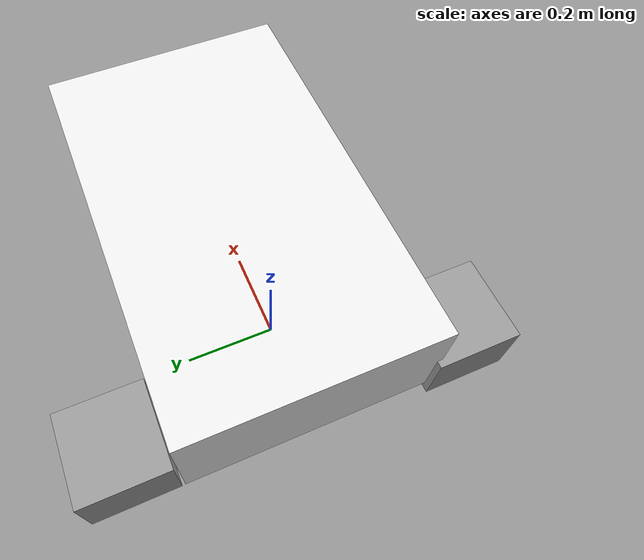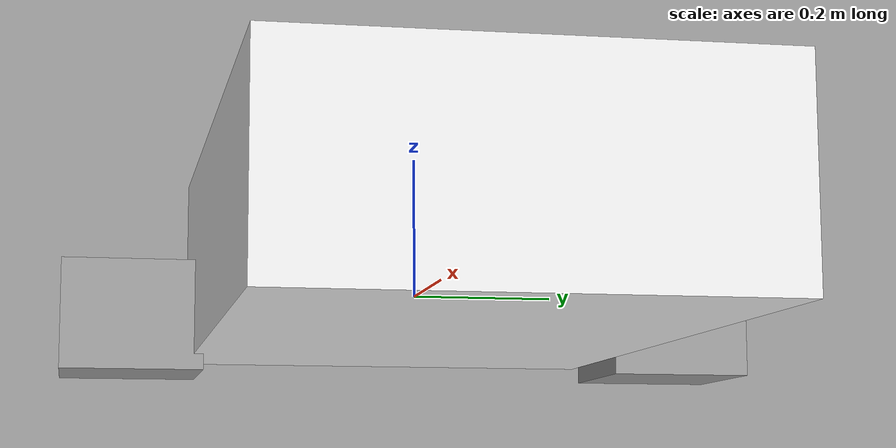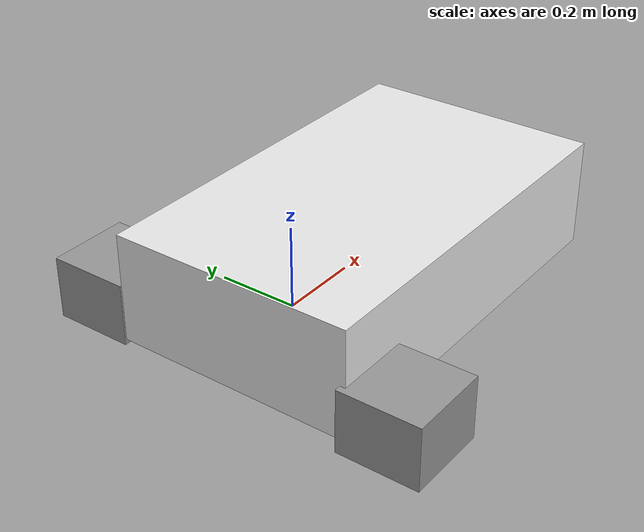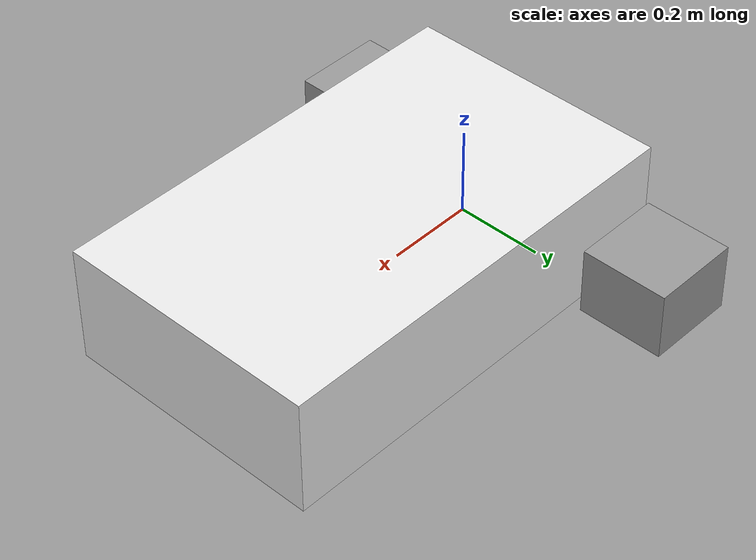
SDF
<?xml version='1.0'?>
<sdf version='1.7'>
  <model name='bed'>
    <link name='link_1'>
      <inertial>
        <mass>0.166557</mass>
        <inertia>
          <ixx>0.00618823</ixx>
          <ixy>0</ixy>
          <ixz>0</ixz>
          <iyy>0.0149173</iyy>
          <iyz>0</iyz>
          <izz>0.0190304</izz>
        </inertia>
        <pose>0 0 0 0 -0 0</pose>
      </inertial>
      <pose>0.268517 -0.007523 0.053425 0 -0 0</pose>
      <gravity>1</gravity>
      <self_collide>0</self_collide>
      <kinematic>0</kinematic>
      <enable_wind>0</enable_wind>
      <visual name='visual'>
        <pose>0 0 0 0 -0 0</pose>
        <geometry>
          <box>
            <size>1 0.609172 0.273416</size>
          </box>
        </geometry>
        <material>
          <lighting>1</lighting>
          <script>
            <uri>file://media/materials/scripts/gazebo.material</uri>
            <name>Gazebo/White</name>
          </script>
          <shader type='pixel'>
            <normal_map>__default__</normal_map>
          </shader>
          <ambient>1 1 1 1</ambient>
          <diffuse>1 1 1 1</diffuse>
          <specular>0 0 0 1</specular>
          <emissive>0 0 0 1</emissive>
        </material>
        <transparency>0</transparency>
        <cast_shadows>1</cast_shadows>
      </visual>
      <collision name='collision'>
        <laser_retro>0</laser_retro>
        <max_contacts>10</max_contacts>
        <pose>0 0 0 0 -0 0</pose>
        <geometry>
          <box>
            <size>1 0.609172 0.273416</size>
          </box>
        </geometry>
        <surface>
          <friction>
            <ode>
              <mu>1</mu>
              <mu2>1</mu2>
              <fdir1>0 0 0</fdir1>
              <slip1>0</slip1>
              <slip2>0</slip2>
            </ode>
            <torsional>
              <coefficient>1</coefficient>
              <patch_radius>0</patch_radius>
              <surface_radius>0</surface_radius>
              <use_patch_radius>1</use_patch_radius>
              <ode>
                <slip>0</slip>
              </ode>
            </torsional>
          </friction>
          <bounce>
            <restitution_coefficient>0</restitution_coefficient>
            <threshold>1e+06</threshold>
          </bounce>
          <contact>
            <collide_without_contact>0</collide_without_contact>
            <collide_without_contact_bitmask>1</collide_without_contact_bitmask>
            <collide_bitmask>1</collide_bitmask>
            <ode>
              <soft_cfm>0</soft_cfm>
              <soft_erp>0.2</soft_erp>
              <kp>1e+13</kp>
              <kd>1</kd>
              <max_vel>0.01</max_vel>
              <min_depth>0</min_depth>
            </ode>
            <bullet>
              <split_impulse>1</split_impulse>
              <split_impulse_penetration_threshold>-0.01</split_impulse_penetration_threshold>
              <soft_cfm>0</soft_cfm>
              <soft_erp>0.2</soft_erp>
              <kp>1e+13</kp>
              <kd>1</kd>
            </bullet>
          </contact>
        </surface>
      </collision>
    </link>
    <link name='link_2'>
      <inertial>
        <mass>0.00661892</mass>
        <inertia>
          <ixx>3.651e-05</ixx>
          <ixy>0</ixy>
          <ixz>0</ixz>
          <iyy>3.722e-05</iyy>
          <iyz>0</iyz>
          <izz>4.631e-05</izz>
        </inertia>
        <pose>0 0 0 0 -0 0</pose>
      </inertial>
      <pose>-0.144333 -0.400103 -0.02691 0 -0 0</pose>
      <gravity>1</gravity>
      <self_collide>0</self_collide>
      <kinematic>0</kinematic>
      <enable_wind>0</enable_wind>
      <visual name='visual'>
        <pose>0 0 0 0 -0 0</pose>
        <geometry>
          <box>
            <size>0.206441 0.203314 0.157681</size>
          </box>
        </geometry>
        <material>
          <lighting>1</lighting>
          <script>
            <uri>file://media/materials/scripts/gazebo.material</uri>
            <name>Gazebo/Grey</name>
          </script>
          <shader type='pixel'>
            <normal_map>__default__</normal_map>
          </shader>
          <ambient>0 0 0 1</ambient>
          <diffuse>0 0 0 1</diffuse>
          <specular>0 0 0 1</specular>
          <emissive>0 0 0 1</emissive>
        </material>
        <transparency>0</transparency>
        <cast_shadows>1</cast_shadows>
      </visual>
      <collision name='collision'>
        <laser_retro>0</laser_retro>
        <max_contacts>10</max_contacts>
        <pose>0 0 0 0 -0 0</pose>
        <geometry>
          <box>
            <size>0.206441 0.203314 0.157681</size>
          </box>
        </geometry>
        <surface>
          <friction>
            <ode>
              <mu>1</mu>
              <mu2>1</mu2>
              <fdir1>0 0 0</fdir1>
              <slip1>0</slip1>
              <slip2>0</slip2>
            </ode>
            <torsional>
              <coefficient>1</coefficient>
              <patch_radius>0</patch_radius>
              <surface_radius>0</surface_radius>
              <use_patch_radius>1</use_patch_radius>
              <ode>
                <slip>0</slip>
              </ode>
            </torsional>
          </friction>
          <bounce>
            <restitution_coefficient>0</restitution_coefficient>
            <threshold>1e+06</threshold>
          </bounce>
          <contact>
            <collide_without_contact>0</collide_without_contact>
            <collide_without_contact_bitmask>1</collide_without_contact_bitmask>
            <collide_bitmask>1</collide_bitmask>
            <ode>
              <soft_cfm>0</soft_cfm>
              <soft_erp>0.2</soft_erp>
              <kp>1e+13</kp>
              <kd>1</kd>
              <max_vel>0.01</max_vel>
              <min_depth>0</min_depth>
            </ode>
            <bullet>
              <split_impulse>1</split_impulse>
              <split_impulse_penetration_threshold>-0.01</split_impulse_penetration_threshold>
              <soft_cfm>0</soft_cfm>
              <soft_erp>0.2</soft_erp>
              <kp>1e+13</kp>
              <kd>1</kd>
            </bullet>
          </contact>
        </surface>
      </collision>
    </link>
    <link name='link_2_clone'>
      <inertial>
        <mass>0.00661892</mass>
        <inertia>
          <ixx>3.651e-05</ixx>
          <ixy>0</ixy>
          <ixz>0</ixz>
          <iyy>3.722e-05</iyy>
          <iyz>0</iyz>
          <izz>4.631e-05</izz>
        </inertia>
        <pose>0 0 0 0 -0 0</pose>
      </inertial>
      <pose>-0.124183 0.407627 -0.026515 0 -0 0</pose>
      <gravity>1</gravity>
      <self_collide>0</self_collide>
      <kinematic>0</kinematic>
      <enable_wind>0</enable_wind>
      <visual name='visual'>
        <pose>0 0 0 0 -0 0</pose>
        <geometry>
          <box>
            <size>0.206441 0.203314 0.157681</size>
          </box>
        </geometry>
        <material>
          <lighting>1</lighting>
          <script>
            <uri>file://media/materials/scripts/gazebo.material</uri>
            <name>Gazebo/Grey</name>
          </script>
          <shader type='pixel'>
            <normal_map>__default__</normal_map>
          </shader>
          <ambient>0 0 0 1</ambient>
          <diffuse>0 0 0 1</diffuse>
          <specular>0 0 0 1</specular>
          <emissive>0 0 0 1</emissive>
        </material>
        <transparency>0</transparency>
        <cast_shadows>1</cast_shadows>
      </visual>
      <collision name='collision'>
        <laser_retro>0</laser_retro>
        <max_contacts>10</max_contacts>
        <pose>0 0 0 0 -0 0</pose>
        <geometry>
          <box>
            <size>0.206441 0.203314 0.157681</size>
          </box>
        </geometry>
        <surface>
          <friction>
            <ode>
              <mu>1</mu>
              <mu2>1</mu2>
              <fdir1>0 0 0</fdir1>
              <slip1>0</slip1>
              <slip2>0</slip2>
            </ode>
            <torsional>
              <coefficient>1</coefficient>
              <patch_radius>0</patch_radius>
              <surface_radius>0</surface_radius>
              <use_patch_radius>1</use_patch_radius>
              <ode>
                <slip>0</slip>
              </ode>
            </torsional>
          </friction>
          <bounce>
            <restitution_coefficient>0</restitution_coefficient>
            <threshold>1e+06</threshold>
          </bounce>
          <contact>
            <collide_without_contact>0</collide_without_contact>
            <collide_without_contact_bitmask>1</collide_without_contact_bitmask>
            <collide_bitmask>1</collide_bitmask>
            <ode>
              <soft_cfm>0</soft_cfm>
              <soft_erp>0.2</soft_erp>
              <kp>1e+13</kp>
              <kd>1</kd>
              <max_vel>0.01</max_vel>
              <min_depth>0</min_depth>
            </ode>
            <bullet>
              <split_impulse>1</split_impulse>
              <split_impulse_penetration_threshold>-0.01</split_impulse_penetration_threshold>
              <soft_cfm>0</soft_cfm>
              <soft_erp>0.2</soft_erp>
              <kp>1e+13</kp>
              <kd>1</kd>
            </bullet>
          </contact>
        </surface>
      </collision>
    </link>
    <joint name='link_2_JOINT_0' type='revolute'>
      <parent>link_2</parent>
      <child>link_1</child>
      <pose>0 0 0 0 -0 0</pose>
      <axis>
        <xyz>1 0 0</xyz>
        <limit>
          <lower>-1.79769e+308</lower>
          <upper>1.79769e+308</upper>
          <effort>-1</effort>
          <velocity>-1</velocity>
        </limit>
        <dynamics>
          <spring_reference>0</spring_reference>
          <spring_stiffness>0</spring_stiffness>
          <damping>0</damping>
        </dynamics>
      </axis>
      <physics>
        <ode>
          <limit>
            <cfm>0</cfm>
            <erp>0.2</erp>
          </limit>
          <suspension>
            <cfm>0</cfm>
            <erp>0.2</erp>
          </suspension>
        </ode>
      </physics>
    </joint>
    <joint name='link_2_clone_JOINT_1' type='revolute'>
      <parent>link_2_clone</parent>
      <child>link_1</child>
      <pose>0 0 0 0 -0 0</pose>
      <axis>
        <xyz>1 0 0</xyz>
        <limit>
          <lower>-1.79769e+308</lower>
          <upper>1.79769e+308</upper>
          <effort>-1</effort>
          <velocity>-1</velocity>
        </limit>
        <dynamics>
          <spring_reference>0</spring_reference>
          <spring_stiffness>0</spring_stiffness>
          <damping>0</damping>
        </dynamics>
      </axis>
      <physics>
        <ode>
          <limit>
            <cfm>0</cfm>
            <erp>0.2</erp>
          </limit>
          <suspension>
            <cfm>0</cfm>
            <erp>0.2</erp>
          </suspension>
        </ode>
      </physics>
    </joint>
    <static>1</static>
    <allow_auto_disable>1</allow_auto_disable>
  </model>
</sdf>
